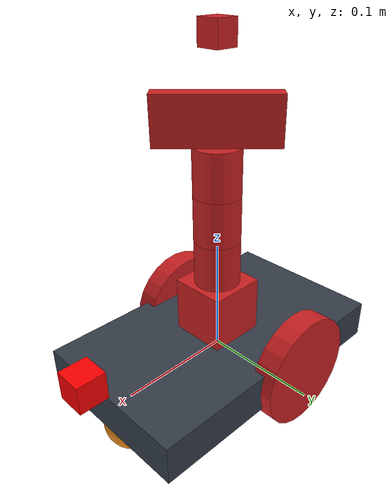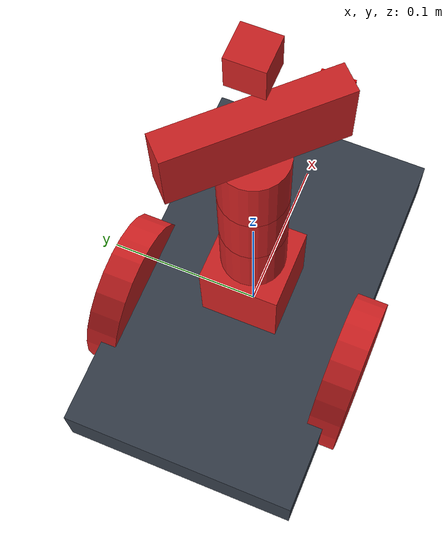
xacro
<?xml version="1.0"?>
<robot xmlns:xacro="http://www.ros.org/wiki/xacro" name="robot2_laser_xacro">
<xacro:include filename="$(find assignment2)/urdf/robot2_laser.gazebo"/>

	<xacro:property name="length_wheel" value="0.02" />
	<xacro:property name="radius_wheel" value="0.05" />

	<xacro:macro name="default_inertial" params="mass">
               <inertial>
                       <mass value="${mass}" />
                       <origin rpy="0 1.5707 1.5707" xyz="0 0 0"/>
                       <inertia ixx="0.000526666666667" ixy="0" ixz="0" iyy="0.000526666666667" iyz="0" izz="0.001"/>
               </inertial>
	</xacro:macro>

    <xacro:macro name="wheel_geometry">
		<geometry>
       			<cylinder length="${length_wheel}" radius="${radius_wheel}"/>
     	</geometry>
	</xacro:macro>

  <material name="black">
    <color rgba="0.0 0.0 0.0 1.0"/>
  </material>
  <material name="blue">
    <color rgba="0.203125 0.23828125 0.28515625 1.0"/>
  </material>
  <material name="green">
    <color rgba="0.0 0.8 0.0 1.0"/>
  </material>
  <material name="grey">
    <color rgba="0.2 0.2 0.2 1.0"/>
  </material>
  <material name="orange">
    <color rgba="1.0 0.423529411765 0.0392156862745 1.0"/>
  </material>
  <material name="brown">
    <color rgba="0.870588235294 0.811764705882 0.764705882353 1.0"/>
  </material>
  <material name="red">
    <color rgba="0.80078125 0.12890625 0.1328125 1.0"/>
  </material>
  <material name="white">
    <color rgba="1.0 1.0 1.0 1.0"/>
  </material>

	  <link name="link_chassis">
    <!-- pose and inertial -->
    <pose>0 0 0.1 0 0 0</pose>
    <inertial>
      <mass value="5"/>
      <origin rpy="0 0 0" xyz="0 0 0.1"/>
      <inertia ixx="0.0395416666667" ixy="0" ixz="0" iyy="0.106208333333" iyz="0" izz="0.106208333333"/>
    </inertial>
    <!-- body -->
    <collision name="collision_chassis">
      <geometry>
        <box size="0.25 0.15 0.035"/>
      </geometry>
    </collision>
    <visual>
      <origin rpy="0 0 0" xyz="0 0 0"/>
      <geometry>
        <box size="0.25 0.15 0.035"/>
      </geometry>
      <material name="blue"/>
    </visual>
    <!-- caster front -->
    <collision name="caster_front_collision">
      <origin rpy=" 0 0 0" xyz="0.175 0 -0.025"/>
      <geometry>
        <sphere radius="0.025"/>
      </geometry>
    </collision>
    <visual name="caster_front_visual">
      <origin rpy=" 0 0 0" xyz="0.1 0 -0.025"/>
      <geometry>
        <sphere radius="0.025"/>
      </geometry>
    </visual>
  </link>

   <link name="link_right_wheel">
    <xacro:default_inertial mass="0.2"/>
    <collision name="link_right_wheel_collision">
      <origin rpy="0 1.5707 1.5707" xyz="0 0 0"/>
      <xacro:wheel_geometry />
    </collision>
    <visual name="link_right_wheel_visual">
      <origin rpy="0 1.5707 1.5707" xyz="0 0 0"/>
      <xacro:wheel_geometry />
      <material name="red"/>
    </visual>
  </link>

   <link name="link_left_wheel">
    <xacro:default_inertial mass="0.2"/>
    <collision name="link_left_wheel_collision">
      <origin rpy="0 1.5707 1.5707" xyz="0 0 0"/>
      <xacro:wheel_geometry />
    </collision>
    <visual name="link_left_wheel_visual">
      <origin rpy="0 1.5707 1.5707" xyz="0 0 0"/>
      <xacro:wheel_geometry />
      <material name="red"/>
    </visual>
  </link>

  <joint name="joint_right_wheel" type="continuous">
    <origin rpy="0 0 0" xyz="-0.025 0.075 0"/>
    <child link="link_right_wheel"/>
    <parent link="link_chassis"/>
    <axis rpy="0 0 0" xyz="0 1 0"/>
    <limit effort="10000" velocity="1000"/>
    <joint_properties damping="1.0" friction="1.0"/>
  </joint>

  <joint name="joint_left_wheel" type="continuous">
    <origin rpy="0 0 0" xyz="-0.025 -0.075 0"/>
    <child link="link_left_wheel"/>
    <parent link="link_chassis"/>
    <axis rpy="0 0 0" xyz="0 1 0"/>
    <limit effort="10000" velocity="1000"/>
    <joint_properties damping="1.0" friction="1.0"/>
  </joint>

  <link name="arm_base_link">
	<inertial>
		<mass value="0.0125"/>
		<origin xyz="0 0 0" rpy="0 0 0" />
		<inertia ixx="0.000005208333333375" ixy="0" ixz="0" iyy="0.000005208333333375" iyz="0" izz="0.000005208333333375"/>
	</inertial>
	<collision>
		<origin xyz="0 0 0" rpy="0 0 0"/>
		<geometry>
			<box size="0.05 0.05 0.05"/>
		</geometry>
	</collision>
	<visual>
		<origin xyz="0 0 0" rpy="0 0 0"/>
		<geometry>
			<box size="0.05 0.05 0.05"/>
		</geometry>
		<material name="red" />
	</visual>
</link>

<joint name="arm_base_to_base" type="fixed">
	<origin rpy="0 0 0" xyz="0 0 0.0425"/>
	<parent link="link_chassis"/>
	<child link="arm_base_link"/>
</joint>

<!-- Rest of the arm definition -->

<link name="arm_link_01">
	<inertial>
		<mass value="0.00625"/>
		<origin xyz="0 0 0" rpy="0 0 0" />
		<inertia ixx="0.00000256975" ixy="0" ixz="0" iyy="0.00000256975" iyz="0" izz="0.00000180625"/>
	</inertial>
	<collision>
		<origin xyz="0 0 0" rpy="0 0 0"/>
		<geometry>
			<cylinder radius="0.02" length="0.04"/>
		</geometry>
	</collision>
	<visual>
		<origin xyz="0 0 0" rpy="0 0 0"/>
		<geometry>
			<cylinder radius="0.02" length="0.04"/>
		</geometry>
		<material name="red" />
	</visual>
</link>

<joint name="arm_joint_01" type="revolute">
	<axis xyz="0 0 1"/>
	<limit effort="1000.0" lower="-3.14" upper="3.14" velocity="0.2"/>
	<origin rpy="0 0 0" xyz="0 0 0.045"/>
	<parent link="arm_base_link"/>
	<child link="arm_link_01"/>
</joint>

<link name="arm_link_02">
	<inertial>
		<mass value="0.00625"/>
		<origin xyz="0 0 0" rpy="0 0 0" />
		<inertia ixx="0.00000256975" ixy="0" ixz="0" iyy="0.00000256975" iyz="0" izz="0.00000180625"/>
	</inertial>
	<collision>
		<origin xyz="0 0 0.02" rpy="0 0 0"/>
		<geometry>
			<cylinder radius="0.02" length="0.04"/>
		</geometry>
	</collision>
	<visual>
		<origin xyz="0 0 0.02" rpy="0 0 0"/>
		<geometry>
			<cylinder radius="0.02" length="0.04"/>
		</geometry>
		<material name="red" />
	</visual>
</link>

<joint name="arm_joint_02" type="revolute">
	<axis xyz="1 0 0"/>
	<limit effort="1000.0" lower="-1.8" upper="1.8" velocity="0.2"/>
	<origin rpy="0 0 0" xyz="0 0 0.02"/>
	<parent link="arm_link_01"/>
	<child link="arm_link_02"/>
</joint>

<link name="arm_link_03">
	<inertial>
		<mass value="0.00625"/>
		<origin xyz="0 0 0" rpy="0 0 0" />
		<inertia ixx="0.00000256975" ixy="0" ixz="0" iyy="0.00000256975" iyz="0" izz="0.00000180625"/>
	</inertial>
	<collision>
		<origin xyz="0 0 0.02" rpy="0 0 0"/>
		<geometry>
			<cylinder radius="0.02" length="0.04"/>
		</geometry>
	</collision>
	<visual>
		<origin xyz="0 0 0.02" rpy="0 0 0"/>
		<geometry>
			<cylinder radius="0.02" length="0.04"/>
		</geometry>
		<material name="red" />
	</visual>
</link>

<joint name="arm_joint_03" type="revolute">
	<axis xyz="1 0 0"/>
	<limit effort="1000.0" lower="-1.8" upper="1.8" velocity="0.2"/>
	<origin rpy="0 0 0" xyz="0 0 0.04"/>
	<parent link="arm_link_02"/>
	<child link="arm_link_03"/>
</joint>

<link name="arm_link_04">
	<inertial>
		<mass value="0.00625"/>
		<origin xyz="0 0 0" rpy="0 0 0" />
		<inertia ixx="0.00000256975" ixy="0" ixz="0" iyy="0.00000256975" iyz="0" izz="0.00000180625"/>
	</inertial>
	<collision>
		<origin xyz="0 0 0.02" rpy="0 0 0.785"/>
		<geometry>
			<box size="0.017 0.1 0.04"/>
		</geometry>
	</collision>
	<visual>
		<origin xyz="0 0 0.02" rpy="0 0 0.785"/>
		<geometry>
			<box size="0.017 0.1 0.04"/>
		</geometry>
		<material name="red" />
	</visual>
</link>

<joint name="arm_joint_04" type="revolute">
	<axis xyz="1 0 0"/>
	<limit effort="1000.0" lower="-1.8" upper="1.8" velocity="0.5"/>
	<origin rpy="0 0 0" xyz="0 0 0.04"/>
	<parent link="arm_link_03"/>
	<child link="arm_link_04"/>
</joint>

  <link name="hokuyo_link">
	    <collision>
	      <origin xyz="0 0 0.00125" rpy="0 0 0"/>
	      <geometry>
		<box size="0.025 0.025 0.025"/>
	      </geometry>
	    </collision>
	    <visual>
	      <origin xyz="0 0 0.0125" rpy="0 0 0"/>
	      <geometry>
		<box size="0.025 0.025 0.025"/>
	      </geometry>
	      <material name="red">
		<color rgba="1 0 0 1"/>
	      </material>
	    </visual>
	    <inertial>
	      <mass value="1e-5" />
	      <origin xyz="0 0 0" rpy="0 0 0"/>
	      <inertia ixx="1e-6" ixy="0" ixz="0" iyy="1e-6" iyz="0" izz="1e-6" />
	    </inertial>
  </link>

  <joint name="hokuyo_joint" type="fixed">
	    <axis xyz="0 1 0" />
	    <origin xyz="0.14 0 0.025" rpy="0 0 0"/>
	    <parent link="link_chassis"/>
	    <child link="hokuyo_link"/>
	 </joint>

  <joint name="camera_joint" type="fixed">
    <axis xyz="0 1 0" />
    <origin xyz="0 0 0.08" rpy="0 0 0"/>
    <parent link="arm_link_04"/>
    <child link="camera_link"/>
  </joint>

  <!-- Camera -->
  <link name="camera_link">
    <collision>
      <origin xyz="0.02 0.02 0.02" rpy="0 0 0"/>
      <geometry>
    <box size="0.02 0.02 0.02"/>
      </geometry>
    </collision>

    <visual>
      <origin xyz="0 0 0" rpy="0 0 0"/>
      <geometry>
    <box size="0.02 0.02 0.02"/>
      </geometry>
      <material name="red"/>
    </visual>

    <inertial>
      <mass value="1e-5" />
      <origin xyz="0 0 0" rpy="0 0 0"/>
      <inertia ixx="1e-6" ixy="0" ixz="0" iyy="1e-6" iyz="0" izz="1e-6" />
    </inertial>
  </link>

</robot>
